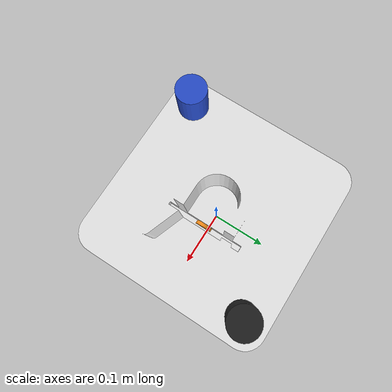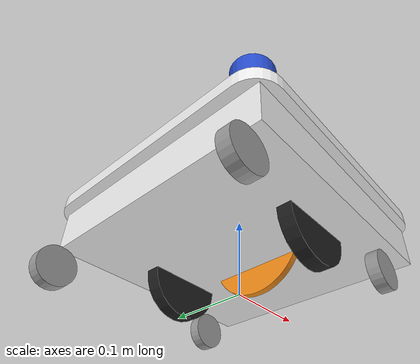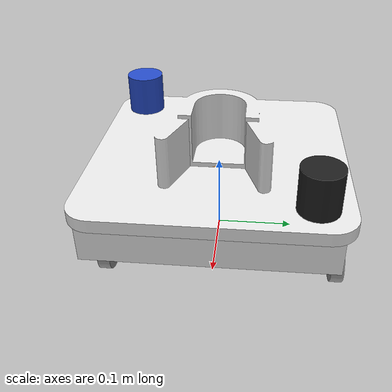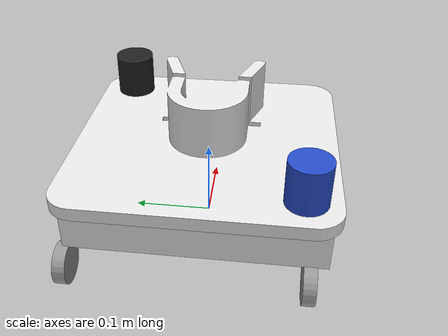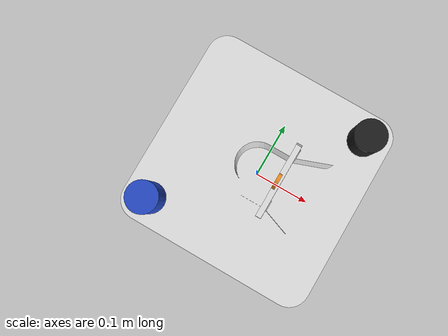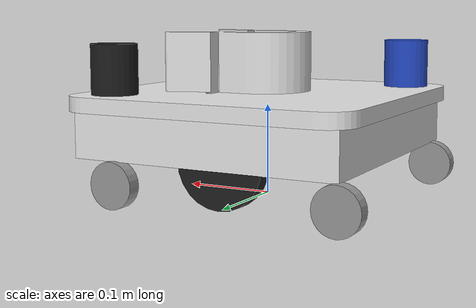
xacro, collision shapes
<?xml version="1.0" ?>
<robot name="$(arg robotName)" xmlns:xacro="http://ros.org/wiki/xacro">

  <xacro:include filename="$(find amr_description)/urdf/common_properties.xacro"/>
  <xacro:include filename="$(find amr_description)/urdf/solamr.gazebo.xacro"/>

  <xacro:property name="r200_cam_rgb_px" value="0.005"/>
  <xacro:property name="r200_cam_rgb_py" value="0.018"/>
  <xacro:property name="r200_cam_rgb_pz" value="0.013"/>
  <xacro:property name="r200_cam_depth_offset" value="0.01"/>

    <!-- #### constants #### -->
    <xacro:property name="deg_to_rad" value="0.017453"/>
    <xacro:property name="PI" value="3.14"/>

    <xacro:macro name="cylinder_inertia" params ="m r h">
        <inertial>
            <mass value="${m}"/>
            <inertia ixx="${m*(3*r*r+h*h)/12}" ixy="0.0" ixz="0.0"
                     iyy="${m*(3*r*r+h*h)/12}" iyz= "0.0"
                     izz="${m*r*r/2}"/>
         </inertial>
     </xacro:macro>

    <!-- #### chassis property #### -->
    <xacro:property name="chassis_length" value=".3"/>
    <xacro:property name="chassis_width" value=".3"/>
    <xacro:property name="chassis_height" value="0.05"/>

    <!-- ####  caster property #### -->
    <xacro:property name="caster_radius" value="0.025"/>
    <xacro:property name="caster_length" value="0.015"/>
    <xacro:property name="caster_mass" value=".2"/>

    <!-- #####  caster macro  ##### -->

    <xacro:macro name="caster" params= "prefix suffix X1 X2 Y1 Y2">

      <joint name="${prefix}_${suffix}_caster_joint" type="fixed">
        <parent link= "chassis"/>
        <child link= "${prefix}_${suffix}_caster"/>
        <origin xyz= "${(chassis_length/2)*X1 + (chassis_length/2-.05)*X2} ${(chassis_width/2-0.02)*Y1 + (chassis_width/2)*Y2} 0 " rpy="0 0 0"/>
        <dynamics damping="0.0" friction="0.0"/>
      </joint>

      <link name= "${prefix}_${suffix}_caster">
        <visual>
          <origin rpy= "${PI/2} 0 0" xyz= "0 0 0"/>
          <geometry>
              <mesh filename="package://amr_description/meshes/solamr/caster.stl" scale="0.0002 0.0002 0.0002"/>
          </geometry>
          <material name= "grey"/>
        </visual>
        <collision>
          <origin rpy= "${PI/2} 0 0" xyz= "0 0 ${caster_radius + 0.001}"/>
          <geometry>
            <cylinder length="${caster_length}" radius= "${caster_radius}"/>
          </geometry>
        </collision>
        <xacro:cylinder_inertia m="${caster_mass}" r="${caster_radius}" h="${caster_length}"/>
      </link>

      <gazebo reference ="${prefix}_${suffix}_caster">
        <mu1 value="0.001"/>
        <mu2 value="0.001"/>
        <kp value="10000000.0"/>
        <kd value= "1.0"/>
        <material>Gazebo/WhiteGlow</material>
      </gazebo>
    </xacro:macro>

  <link name="base_footprint"/>

<!-- #####   BEGIN  ##### -->
<!-- #####  A1 PART ##### -->
<!-- #####   BEGIN  ##### -->

  <joint name="base_joint" type="fixed">
    <parent link="base_footprint"/>
    <child link="chassis" />
    <origin xyz="0 0 0.0" rpy="0 0 0"/>
  </joint>

  <link name="chassis">
    <visual>
      <origin xyz="0.0 0 0.075" rpy="0 0 0"/>
      <geometry>
        <box size="${chassis_length} ${chassis_width} ${chassis_height}"/>
      </geometry>
      <material name="white"/>
    </visual>

    <collision>
      <origin xyz="0.0 0 0.075" rpy="0 0 0"/>
      <geometry>
        <box size="${chassis_length} ${chassis_width} ${chassis_height}"/>
      </geometry>
    </collision>

    <inertial>
      <origin xyz="0 0 0" rpy="0 0 0"/>
      <mass value="50"/>
      <inertia ixx="1.15625e-01" ixy="0" ixz="0"
               iyy="1.15625e-01" iyz="0"
               izz="2.25e-01" />
    </inertial>
  </link>

  <joint name="wheel_left_joint" type="continuous">
    <parent link="chassis"/>
    <child link="wheel_left_link"/>
    <origin xyz="0.0 ${chassis_width/2-0.05} ${0.033*1.5}" rpy="-1.57 0 0"/>
    <axis xyz="0 0 1"/>
  </joint>

  <link name="wheel_left_link">
    <visual>
      <origin xyz="0 0 0" rpy="1.57 0 0"/>
      <geometry>
          <mesh filename="package://amr_description/meshes/solamr/left_tire.stl" scale="0.0015 0.0015 0.0015"/>
      </geometry>
      <material name="dark"/>
    </visual>

    <collision>
      <origin xyz="0 0 0" rpy="0 0 0"/>
      <geometry>
          <cylinder length="0.018" radius="${0.033*1.5}"/>
      </geometry>
    </collision>

    <inertial>
      <origin xyz="0 0 0" />
      <mass value="2.8498940e-02" />
      <inertia ixx="1.1175580e-05" ixy="-4.2369783e-11" ixz="-5.9381719e-09"
               iyy="1.1192413e-05" iyz="-1.4400107e-11"
               izz="2.0712558e-05" />
      </inertial>
  </link>

  <joint name="wheel_right_joint" type="continuous">
    <parent link="chassis"/>
    <child link="wheel_right_link"/>
    <origin xyz="0.0 -${chassis_width/2-0.05} ${0.033*1.5}" rpy="-1.57 0 0"/>
    <axis xyz="0 0 1"/>
  </joint>

  <link name="wheel_right_link">
    <visual>
      <origin xyz="0 0 0" rpy="1.57 0 0"/>
      <geometry>
          <mesh filename="package://amr_description/meshes/solamr/right_tire.stl" scale="0.0015 0.0015 0.0015"/>
      </geometry>
      <material name="dark"/>
    </visual>

    <collision>
      <origin xyz="0 0 0" rpy="0 0 0"/>
      <geometry>
          <cylinder length="0.018" radius="${0.033*1.5}"/>
      </geometry>
    </collision>

    <inertial>
      <origin xyz="0 0 0" />
      <mass value="2.8498940e-02" />
      <inertia ixx="1.1175580e-05" ixy="-4.2369783e-11" ixz="-5.9381719e-09"
               iyy="1.1192413e-05" iyz="-1.4400107e-11"
               izz="2.0712558e-05" />
      </inertial>
  </link>

<!-- #### 4 casters #### -->
  <xacro:caster prefix="right" suffix="front" X1="0" X2="1" Y1="-1" Y2="0" />
  <xacro:caster prefix="right" suffix="back" X1="-1" X2="0" Y1="-1" Y2="0"/>
  <xacro:caster prefix="left" suffix="front" X1="0" X2="1" Y1="0" Y2="1"/>
  <xacro:caster prefix="left" suffix="back" X1="-1" X2="0" Y1="0" Y2="1"/>

<!-- #### Sensors : Lidar #### -->

  <joint name="scan_joint1" type="fixed">
    <parent link="chassis"/>
    <child link="scan_front"/>
    <origin xyz="${chassis_length/2-0.03} ${chassis_width/2-0.03} 0.16" rpy="0 0 -${PI/2}"/>
  </joint>

  <link name="scan_front">
    <visual>
      <origin xyz="0 0 -.06" rpy="${PI/2} 0 0"/>
      <geometry>
        <mesh filename="package://amr_description/meshes/sensors/hokuyo_lidar.stl" scale="0.012 0.012 0.012"/>
      </geometry>
      <material name="black"/>
    </visual>

    <collision>
      <origin xyz="0 0 -.03" rpy="0 0 0"/>
      <geometry>
        <cylinder length="0.08" radius="0.025"/>
      </geometry>
    </collision>

    <inertial>
      <mass value="0.114" />
      <origin xyz="0 0 0" />
      <inertia ixx="0.001" ixy="0.0" ixz="0.0"
               iyy="0.001" iyz="0.0"
               izz="0.001" />
    </inertial>
  </link>

  <joint name="scan_joint2" type="fixed">
    <parent link="chassis"/>
    <child link="scan_rear"/>
    <origin xyz="-${chassis_length/2-0.03} -${chassis_width/2-0.03} 0.16" rpy="0 0 ${PI/2}"/>
  </joint>

  <link name="scan_rear">
    <visual>
      <origin xyz="0 0 -.06" rpy="${PI/2} 0 0"/>
      <geometry>
        <mesh filename="package://amr_description/meshes/sensors/hokuyo_lidar.stl" scale="0.012 0.012 0.012"/>
      </geometry>
      <material name="blue"/>
    </visual>

    <collision>
      <origin xyz="0 0 -0.03" rpy="0 0 0"/>
      <geometry>
        <cylinder length="0.08" radius="0.025"/>
      </geometry>
    </collision>

    <inertial>
      <mass value="0.114" />
      <origin xyz="0 0 0" />
      <inertia ixx="0.001" ixy="0.0" ixz="0.0"
               iyy="0.001" iyz="0.0"
               izz="0.001" />
    </inertial>
  </link>

<!-- #####    END   ##### -->
<!-- #####  A1 PART ##### -->
<!-- #####    END   ##### -->

<!-- #####   BEGIN  ##### -->
<!-- #####  A2 PART ##### -->
<!-- #####   BEGIN  ##### -->

  <joint name="A2_top_joint" type="fixed">
    <parent link="chassis"/>
    <child link="A2_top" />
    <origin xyz="0 0 0.1" rpy="0 0 0"/>
  </joint>

  <link name="A2_top">
    <visual>
      <origin xyz="0.0 0 0.0" rpy="0 0 0"/>
      <geometry>
          <mesh filename="package://amr_description/meshes/solamr/rod_A_top_100.stl" scale="0.0065 0.0065 0.0065"/>
      </geometry>
      <material name="white"/>
    </visual>

    <collision>
      <max_contacts>1</max_contacts>
      <origin xyz="0.0 0 0.0" rpy="0 0 0"/>
      <geometry>
          <mesh filename="package://amr_description/meshes/solamr/rod_A_top_100.stl" scale="0.0065 0.0065 0.0065"/>
      </geometry>
    </collision>

    <inertial>
      <origin xyz="0 0 0" rpy="0 0 0"/>
      <mass value="1.5"/>
      <inertia ixx="2.15625e-02" ixy="0" ixz="0"
               iyy="2.15625e-02" iyz="0"
               izz="2.25e-02" />
    </inertial>
  </link>

  <transmission name="blocker_tran" type="SimpleTransmission">
    <type>transmission_interface/SimpleTransmission</type>
    <joint name="blocker_joint">
      <hardwareInterface>EffortJointInterface</hardwareInterface>
    </joint>
    <actuator name="blocker_motor">
      <hardwareInterface>EffortJointInterface</hardwareInterface>
      <mechanicalReduction>500</mechanicalReduction>
    </actuator>
  </transmission>

  <joint name="blocker_joint" type="continuous">
    <parent link="chassis"/>
    <child link="blocker"/>
    <origin xyz="0.04 0 .1" rpy="0 1.57 0"/>
    <axis xyz="0 0 1"/>
  </joint>

  <link name="blocker">
    <visual>
      <origin xyz=".02 0 -0.0095" rpy="0 0 0"/>
      <geometry>
        <mesh filename="package://amr_description/meshes/solamr/blocker.stl" scale="0.009 0.009 0.009"/>
      </geometry>
      <material name="orange"/>
    </visual>

    <collision>
      <max_contacts>1</max_contacts>
      <origin xyz=".02 0 -0.0095" rpy="0 0 0"/>
      <geometry>
        <mesh filename="package://amr_description/meshes/solamr/blocker.stl" scale="0.009 0.009 0.009"/>
      </geometry>
    </collision>

    <gazebo reference ="blocker">
      <material>Gazebo/Orange</material>
      <turnGravityOff>false</turnGravityOff>
    </gazebo>

    <inertial>
      <origin xyz="0 0 0" rpy="0 0 0"/>
      <mass value="0.5"/>
      <inertia ixx="6.721e-04" ixy="0" ixz="0"
               iyy="6.721e-04" iyz="0"
               izz="1.3141e-03" />
    </inertial>
  </link>

<!-- #####    END   ##### -->
<!-- #####  A2 PART ##### -->
<!-- #####    END   ##### -->

<!-- Begin of camera -->

  <joint name="camera_joint" type="fixed">
    <origin xyz="0.15 0 0.161" rpy="0 -0.35 0"/>
    <parent link="chassis"/>
    <child link="camera_link"/>
  </joint>

  <link name="camera_link">
    <visual>
     <origin xyz="0 0 0" rpy="1.57 0 1.57"/>
      <geometry>
          <mesh filename="package://amr_description/meshes/sensors/r200.dae" />
      </geometry>
    </visual>
  </link>

  <joint name="camera_rgb_joint" type="fixed">
    <origin xyz="${r200_cam_rgb_px} ${r200_cam_rgb_py} ${r200_cam_rgb_pz}" rpy="0 0 0"/>
    <parent link="camera_link"/>
    <child link="camera_rgb_frame"/>
  </joint>
  <link name="camera_rgb_frame"/>

  <joint name="camera_rgb_optical_joint" type="fixed">
    <origin xyz="0 0 0" rpy="-1.57 0 -1.57"/>
    <parent link="camera_rgb_frame"/>
    <child link="camera_rgb_optical_frame"/>
  </joint>
  <link name="camera_rgb_optical_frame"/>

  <joint name="camera_depth_joint" type="fixed">
    <origin xyz="${r200_cam_rgb_px} ${r200_cam_rgb_py + r200_cam_depth_offset} ${r200_cam_rgb_pz}" rpy="0 0 0"/>
    <parent link="camera_link"/>
    <child link="camera_depth_frame"/>
  </joint>
  <link name="camera_depth_frame"/>

  <joint name="camera_depth_optical_joint" type="fixed">
    <origin xyz="0 0 0" rpy="-1.57 0 -1.57"/>
    <parent link="camera_depth_frame"/>
    <child link="camera_depth_optical_frame"/>
  </joint>
  <link name="camera_depth_optical_frame"/>

<!-- End of camera -->

</robot>
